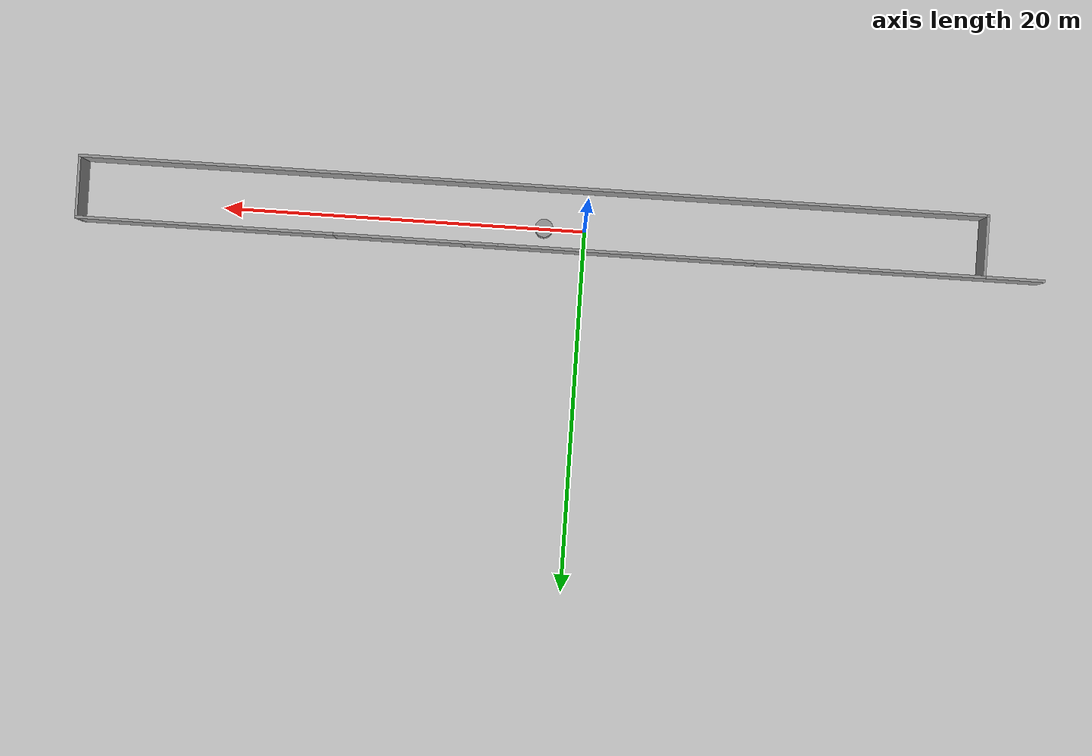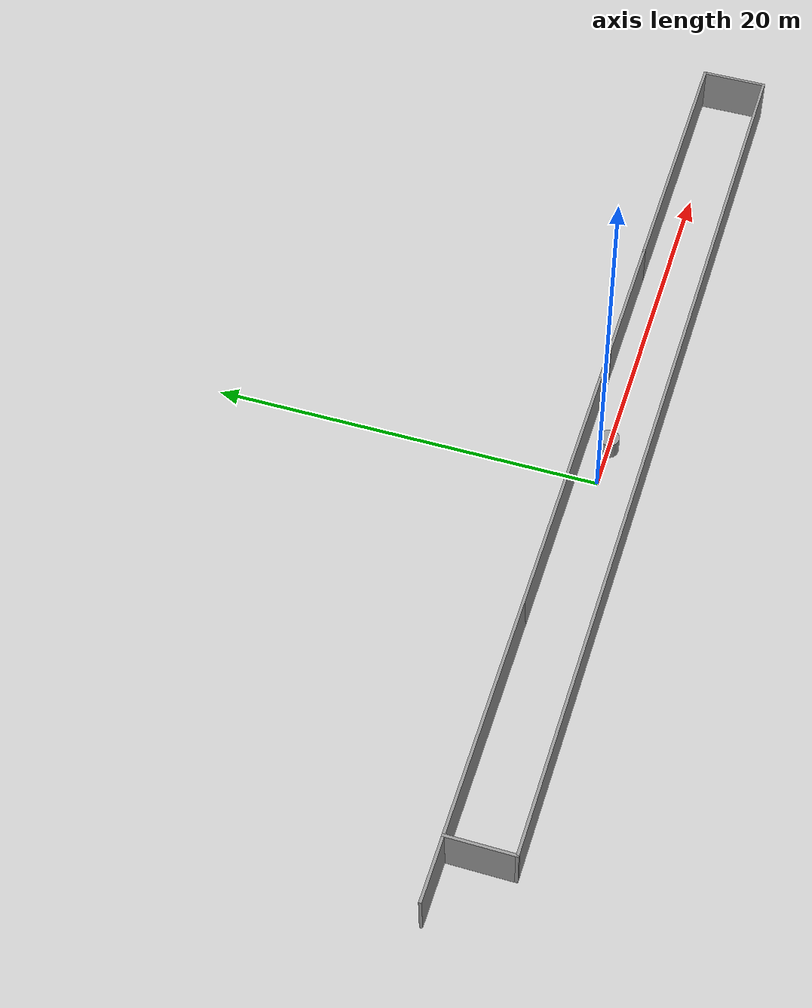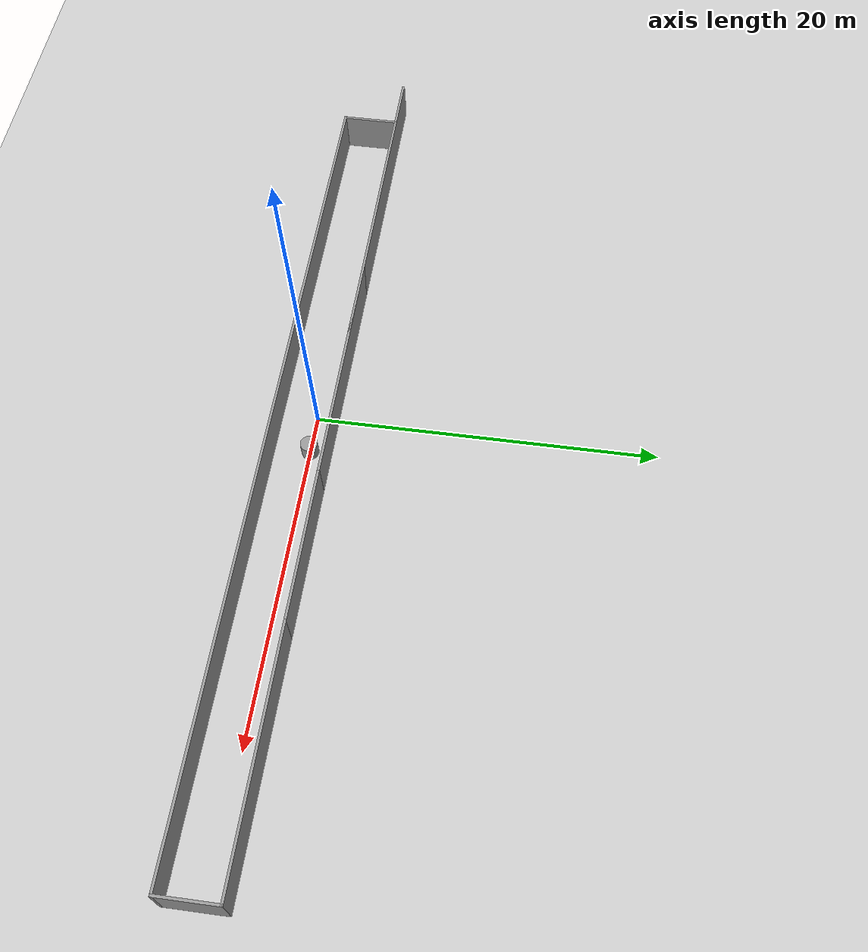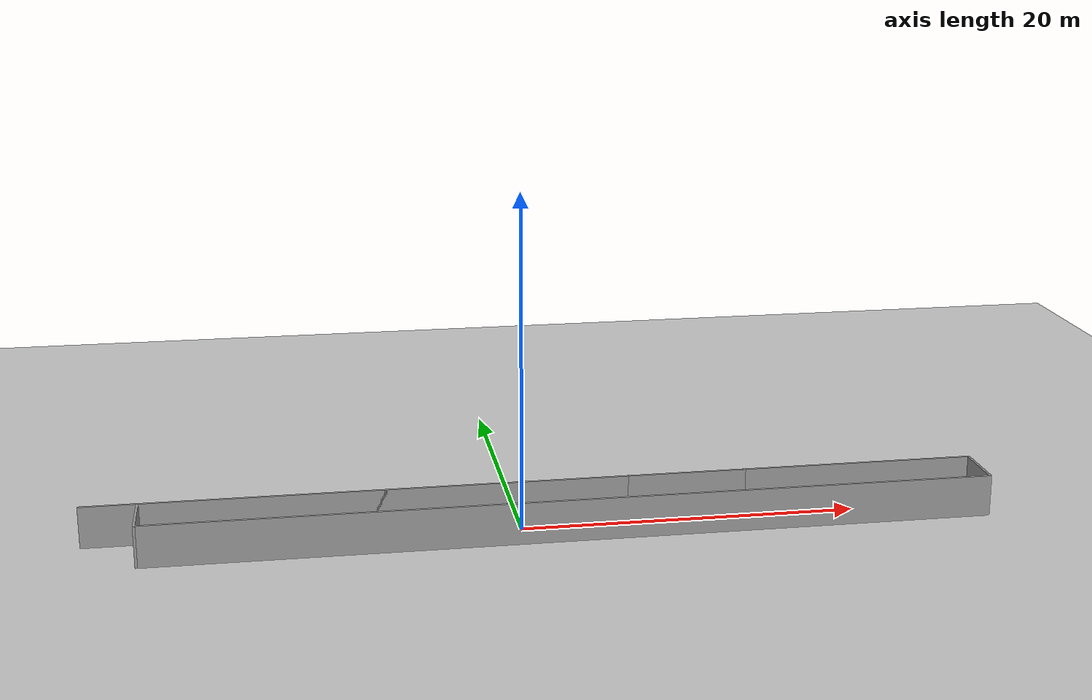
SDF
<sdf version="1.6">
 <world name="default">
  <light name="sun" type="directional">
   <pose>0 0 10 0 -0 0</pose>
   <diffuse>0.8 0.8 0.8 1</diffuse>
   <specular>0.2 0.2 0.2 1</specular>
   <attenuation>
    <range>1000</range>
    <constant>0.9</constant>
    <linear>0.01</linear>
    <quadratic>0.001</quadratic>
   </attenuation>
   <direction>-0.5 0.1 -0.9</direction>
  </light>
  <model name="ground_plane">
   <static>1</static>
   <link name="link">
    <collision name="collision">
     <geometry><plane><normal>0 0 1</normal><size>100 100</size></plane></geometry>
     <surface>
      <contact><collide_bitmask>65535</collide_bitmask></contact>
      <friction><ode><mu>100</mu><mu2>50</mu2></ode></friction>
     </surface>
    </collision>
    <visual name="visual">
     <cast_shadows>0</cast_shadows>
     <geometry><plane><normal>0 0 1</normal><size>100 100</size></plane></geometry>
     <material>
      <script><uri>file://media/materials/scripts/gazebo.material</uri><name>Gazebo/Grey</name></script>
     </material>
    </visual>
   </link>
  </model>
  <gravity>0 0 -9.8</gravity>
  <magnetic_field>6e-06 2.3e-05 -4.2e-05</magnetic_field>
  <atmosphere type="adiabatic"/>
  <physics name="default_physics" default="0" type="ode">
   <max_step_size>0.001</max_step_size>
   <real_time_factor>1</real_time_factor>
   <real_time_update_rate>1000</real_time_update_rate>
  </physics>
  <scene><ambient>0.4 0.4 0.4 1</ambient><background>0.7 0.7 0.7 1</background><shadows>1</shadows></scene>
  <audio><device>default</device></audio>
  <spherical_coordinates>
   <surface_model>EARTH_WGS84</surface_model>
   <latitude_deg>0</latitude_deg>
   <longitude_deg>0</longitude_deg>
   <elevation>0</elevation>
   <heading_deg>0</heading_deg>
  </spherical_coordinates>
  <model name="wall_up01">
   <pose>1.27972 -0.496655 0 0 -0 0</pose>
   <link name="Wall_0">
    <collision name="Wall_0_Collision">
     <geometry><box><size>9 0.15 2.5</size></box></geometry>
     <pose>0 0 1.25 0 -0 0</pose>
    </collision>
    <visual name="Wall_0_Visual">
     <pose>0 0 1.25 0 -0 0</pose>
     <geometry><box><size>9 0.15 2.5</size></box></geometry>
     <material>
      <script><uri>file://media/materials/scripts/gazebo.material</uri><name>Gazebo/Grey</name></script>
      <ambient>1 1 1 1</ambient>
     </material>
     <meta><layer>0</layer></meta>
    </visual>
    <pose>7.9 1.675 0 0 -0 0</pose>
   </link>
   <link name="Wall_1">
    <collision name="Wall_1_Collision">
     <geometry><box><size>14.25 0.15 2.5</size></box></geometry>
     <pose>0 0 1.25 0 -0 0</pose>
    </collision>
    <visual name="Wall_1_Visual">
     <pose>0 0 1.25 0 -0 0</pose>
     <geometry><box><size>14.25 0.15 2.5</size></box></geometry>
     <material>
      <script><uri>file://media/materials/scripts/gazebo.material</uri><name>Gazebo/Grey</name></script>
      <ambient>1 1 1 1</ambient>
     </material>
     <meta><layer>0</layer></meta>
    </visual>
    <pose>19.375 1.675 0 0 -0 0</pose>
   </link>
   <link name="Wall_2">
    <collision name="Wall_2_Collision">
     <geometry><box><size>3.5 0.15 2.5</size></box></geometry>
     <pose>0 0 1.25 0 -0 0</pose>
    </collision>
    <visual name="Wall_2_Visual">
     <pose>0 0 1.25 0 -0 0</pose>
     <geometry><box><size>3.5 0.15 2.5</size></box></geometry>
     <material>
      <script><uri>file://media/materials/scripts/gazebo.material</uri><name>Gazebo/Grey</name></script>
      <ambient>1 1 1 1</ambient>
     </material>
     <meta><layer>0</layer></meta>
    </visual>
    <pose>26.425 0 0 0 -0 -1.5708</pose>
   </link>
   <link name="Wall_3">
    <collision name="Wall_3_Collision">
     <geometry><box><size>49.75 0.15 2.5</size></box></geometry>
     <pose>0 0 1.25 0 -0 0</pose>
    </collision>
    <visual name="Wall_3_Visual">
     <pose>0 0 1.25 0 -0 0</pose>
     <geometry><box><size>49.75 0.15 2.5</size></box></geometry>
     <material>
      <script><uri>file://media/materials/scripts/gazebo.material</uri><name>Gazebo/Grey</name></script>
      <ambient>1 1 1 1</ambient>
     </material>
     <meta><layer>0</layer></meta>
    </visual>
    <pose>1.625 -1.675 0 0 -0 3.14159</pose>
   </link>
   <link name="Wall_4">
    <collision name="Wall_4_Collision">
     <geometry><box><size>3.5 0.15 2.5</size></box></geometry>
     <pose>0 0 1.25 0 -0 0</pose>
    </collision>
    <visual name="Wall_4_Visual">
     <pose>0 0 1.25 0 -0 0</pose>
     <geometry><box><size>3.5 0.15 2.5</size></box></geometry>
     <material>
      <script><uri>file://media/materials/scripts/gazebo.material</uri><name>Gazebo/Grey</name></script>
      <ambient>1 1 1 1</ambient>
     </material>
     <meta><layer>0</layer></meta>
    </visual>
    <pose>-23.175 0 0 0 -0 1.5708</pose>
   </link>
   <link name="Wall_5">
    <collision name="Wall_5_Collision">
     <geometry><box><size>28.5 0.15 2.5</size></box></geometry>
     <pose>0 0 1.25 0 -0 0</pose>
    </collision>
    <visual name="Wall_5_Visual">
     <pose>0 0 1.25 0 -0 0</pose>
     <geometry><box><size>28.5 0.15 2.5</size></box></geometry>
     <material>
      <script><uri>file://media/materials/scripts/gazebo.material</uri><name>Gazebo/Grey</name></script>
      <ambient>1 1 1 1</ambient>
     </material>
     <meta><layer>0</layer></meta>
    </visual>
    <pose>-9 1.675 0 0 -0 0</pose>
   </link>
   <link name="Wall_6">
    <collision name="Wall_6_Collision">
     <geometry><box><size>31.75 0.15 2.5</size></box></geometry>
     <pose>0 0 1.25 0 -0 0</pose>
    </collision>
    <visual name="Wall_6_Visual">
     <pose>0 0 1.25 0 -0 0</pose>
     <geometry><box><size>31.75 0.15 2.5</size></box></geometry>
     <material>
      <script><uri>file://media/materials/scripts/gazebo.material</uri><name>Gazebo/Grey</name></script>
      <ambient>0 0 0 1</ambient>
     </material>
     <meta><layer>0</layer></meta>
    </visual>
    <pose>-10.625 1.675 0 0 -0 3.14159</pose>
   </link>
   <static>1</static>
  </model>
  <model name="unit_cylinder">
   <pose>2.23777 -0.01166 0.499997 3e-06 4e-06 -0</pose>
   <link name="link">
    <inertial>
     <mass>1</mass>
     <inertia><ixx>0.145833</ixx><ixy>0</ixy><ixz>0</ixz><iyy>0.145833</iyy><iyz>0</iyz><izz>0.125</izz></inertia>
    </inertial>
    <collision name="collision">
     <geometry><cylinder><radius>0.5</radius><length>1</length></cylinder></geometry>
    </collision>
    <visual name="visual">
     <geometry><cylinder><radius>0.5</radius><length>1</length></cylinder></geometry>
     <material>
      <script><name>Gazebo/Grey</name><uri>file://media/materials/scripts/gazebo.material</uri></script>
     </material>
    </visual>
   </link>
  </model>
 </world>
</sdf>
